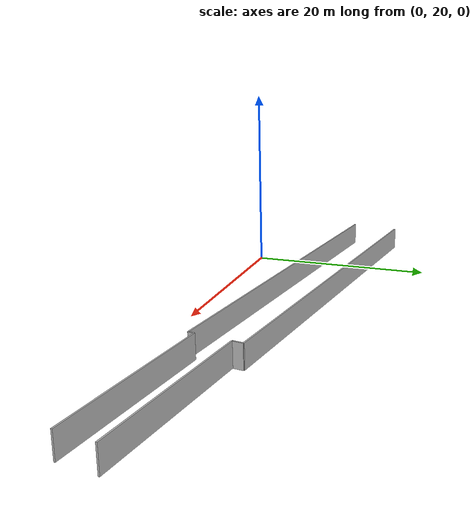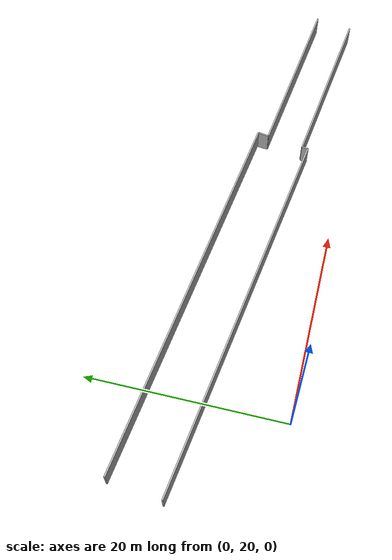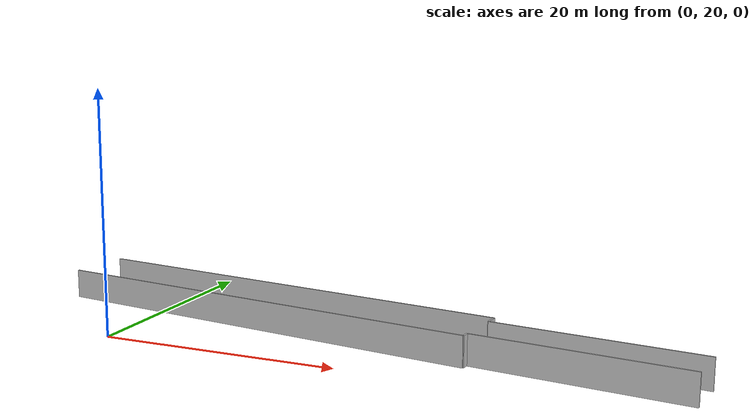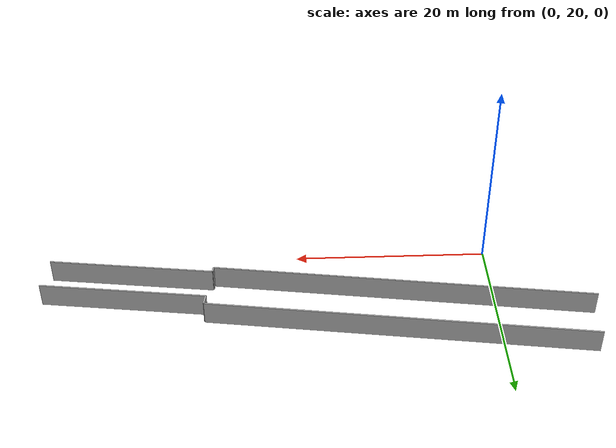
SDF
<?xml version="1.0" ?>
<sdf version="1.6">
  <model name="sps_3402">
    <pose frame="">0 0 0 0 -0 0</pose>
    <static>1</static>
    <self_collide>0</self_collide>
    <allow_auto_disable>0</allow_auto_disable>
    <link name="Wall138">
      <kinematic>0</kinematic>
      <gravity>1</gravity>
      <self_collide>0</self_collide>
      <collision name="collision">
        <geometry>
          <box>
            <size>38.9757 0.15 2.5</size>
          </box>
        </geometry>
        <pose frame="">0 0 0 0 -0 0</pose>
      </collision>
      <visual name="visual">
        <geometry>
          <box>
            <size>38.9757 0.15 2.5</size>
          </box>
        </geometry>
        <pose frame="">0 0 0 0 -0 0</pose>
        <cast_shadows>1</cast_shadows>
        <transparency>0.0</transparency>
      </visual>
      <pose frame="">9.36843 26.7704 1.25 0 -0 2.99862</pose>
    </link>
    <link name="Wall307">
      <kinematic>0</kinematic>
      <gravity>1</gravity>
      <self_collide>0</self_collide>
      <collision name="collision">
        <geometry>
          <box>
            <size>0.626444 0.15 2.5</size>
          </box>
        </geometry>
        <pose frame="">0 0 0 0 -0 0</pose>
      </collision>
      <visual name="visual">
        <geometry>
          <box>
            <size>0.626444 0.15 2.5</size>
          </box>
        </geometry>
        <pose frame="">0 0 0 0 -0 0</pose>
        <cast_shadows>1</cast_shadows>
        <transparency>0.0</transparency>
      </visual>
      <pose frame="">28.702 24.3037 1.25 0 0 -1.71373</pose>
    </link>
    <link name="Wall308">
      <kinematic>0</kinematic>
      <gravity>1</gravity>
      <self_collide>0</self_collide>
      <collision name="collision">
        <geometry>
          <box>
            <size>1.11759 0.15 2.5</size>
          </box>
        </geometry>
        <pose frame="">0 0 0 0 -0 0</pose>
      </collision>
      <visual name="visual">
        <geometry>
          <box>
            <size>1.11759 0.15 2.5</size>
          </box>
        </geometry>
        <pose frame="">0 0 0 0 -0 0</pose>
        <cast_shadows>1</cast_shadows>
        <transparency>0.0</transparency>
      </visual>
      <pose frame="">29.3609 28.8845 1.25 0 0 -1.71482</pose>
    </link>
    <link name="Wall640">
      <kinematic>0</kinematic>
      <gravity>1</gravity>
      <self_collide>0</self_collide>
      <collision name="collision">
        <geometry>
          <box>
            <size>39.0158 0.15 2.5</size>
          </box>
        </geometry>
        <pose frame="">0 0 0 0 -0 0</pose>
      </collision>
      <visual name="visual">
        <geometry>
          <box>
            <size>39.0158 0.15 2.5</size>
          </box>
        </geometry>
        <pose frame="">0 0 0 0 -0 0</pose>
        <cast_shadows>1</cast_shadows>
        <transparency>0.0</transparency>
      </visual>
      <pose frame="">10.1322 32.217 1.25 0 0 -0.142966</pose>
    </link>
    <link name="Wall4221">
      <kinematic>0</kinematic>
      <gravity>1</gravity>
      <self_collide>0</self_collide>
      <collision name="collision">
        <geometry>
          <box>
            <size>16.9873 0.15 2.5</size>
          </box>
        </geometry>
        <pose frame="">0 0 0 0 -0 0</pose>
      </collision>
      <visual name="visual">
        <geometry>
          <box>
            <size>16.9873 0.15 2.5</size>
          </box>
        </geometry>
        <pose frame="">0 0 0 0 -0 0</pose>
        <cast_shadows>1</cast_shadows>
        <transparency>0.0</transparency>
      </visual>
      <pose frame="">37.702 27.2261 1.25 0 0 -0.130516</pose>
    </link>
    <link name="Wall8963">
      <kinematic>0</kinematic>
      <gravity>1</gravity>
      <self_collide>0</self_collide>
      <collision name="collision">
        <geometry>
          <box>
            <size>16.9672 0.15 2.5</size>
          </box>
        </geometry>
        <pose frame="">0 0 0 0 -0 0</pose>
      </collision>
      <visual name="visual">
        <geometry>
          <box>
            <size>16.9672 0.15 2.5</size>
          </box>
        </geometry>
        <pose frame="">0 0 0 0 -0 0</pose>
        <cast_shadows>1</cast_shadows>
        <transparency>0.0</transparency>
      </visual>
      <pose frame="">37.1581 23.5093 1.25 0 0 -0.130551</pose>
    </link>
  </model>
</sdf>
